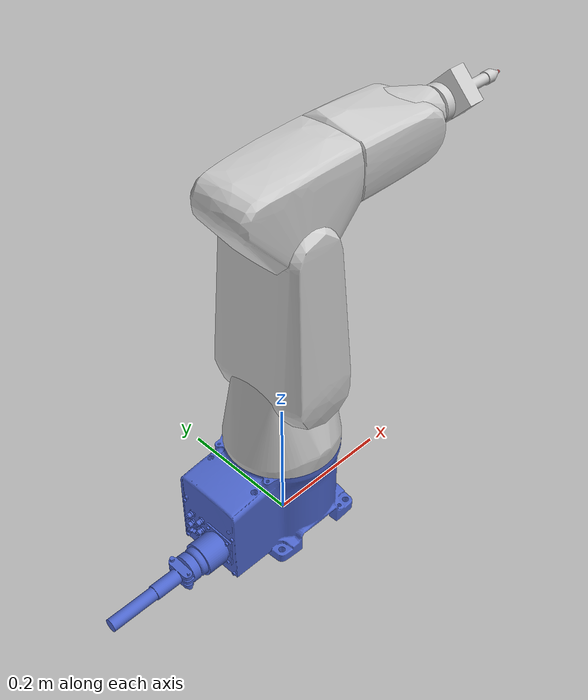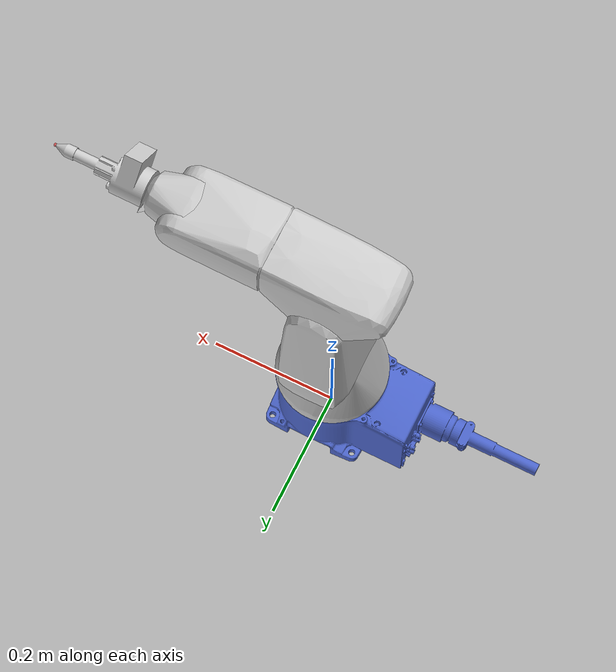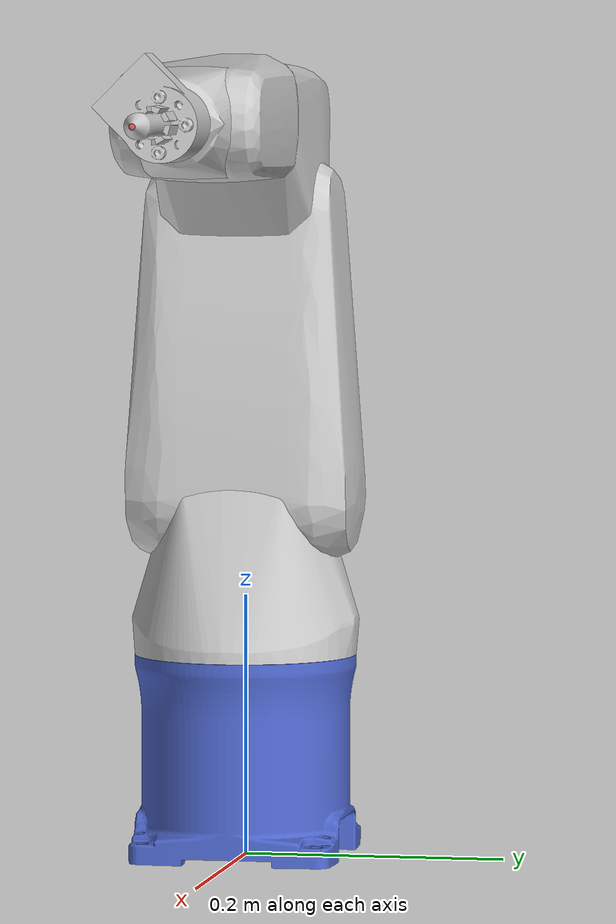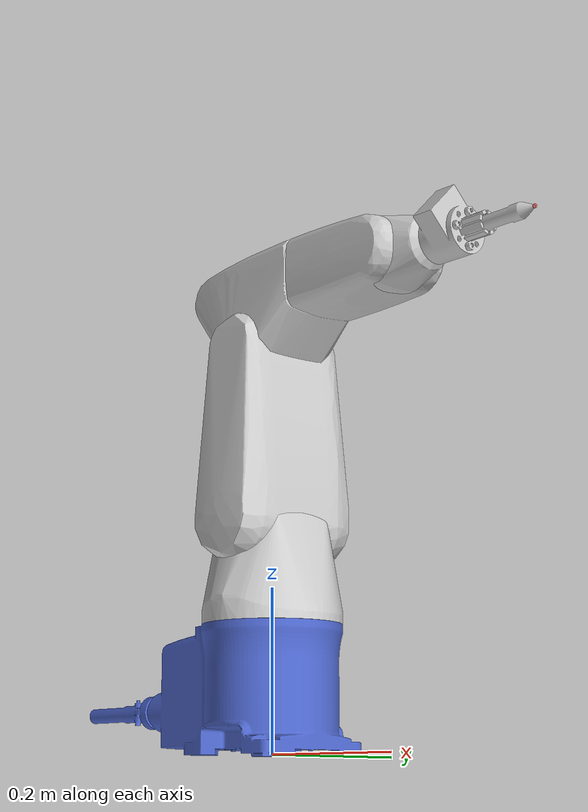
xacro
<?xml version="1.0"?>
<robot xmlns:xacro="http://www.ros.org/wiki/xacro" name="vp6242_force_sensor_soldering_lead">
  <xacro:macro name="mesh_origin">
    <origin rpy="-1.570796 3.141592 0" xyz="0 0 0"/>
  </xacro:macro>
  <xacro:property name="mesh_path" value="package://vp6242_description/robot" />
  <xacro:property name="mesh_scale" value="0.001 0.001 0.001" />
  <xacro:property name="default_joint_velocity" value="1.0" />
  <xacro:property name="default_joint_effort" value="1.0" /> <!-- As acceleration limit -->
  <xacro:property name="pi" value="3.1415926535897931" />
  <xacro:property name="pi2" value="pi / 2.0" />

  <link name="base_link">
    <visual>
	  <geometry>
	    <mesh filename="${mesh_path}/base.dae" scale="${mesh_scale}"/>
	  </geometry>
    <xacro:mesh_origin/>
	  <material name="base_link">
        <color rgba="0.3 0.4 0.8 1"/>
    </material>
    </visual>
    <collision>
	  	<geometry>
  	    <mesh filename="${mesh_path}/base_collision.dae" scale="${mesh_scale}"/>
	  	</geometry>
      <xacro:mesh_origin/>
    </collision>
  </link>

  <link name="link0">
    <visual>
      <geometry>
   	    <mesh filename="${mesh_path}/l0.dae" scale="${mesh_scale}"/>
      </geometry>
      <xacro:mesh_origin/>
      <material name="link">
        <color rgba="0.8 0.8 0.8 1"/>
      </material>
    </visual>
    <collision>
	  	<geometry>
        <mesh filename="${mesh_path}/l0_collision.dae" scale="${mesh_scale}"/>
	  	</geometry>
      <xacro:mesh_origin/>
    </collision>
  </link>

  <joint name="J1" type="revolute">
    <axis xyz="0 0 1"/>
    <limit effort="${default_joint_effort}" lower="${-(160.0/180.0) * pi}" upper="${(160.0/180.0) * pi}" velocity="${default_joint_velocity}"/>
    <origin rpy="0 0 0" xyz="0.0 0.0 0.155"/>
    <parent link="base_link"/>
    <child link="link0"/>
  </joint>

  <link name="link1">
    <visual>
      <geometry>
   	    <mesh filename="${mesh_path}/l1.dae" scale="${mesh_scale}"/>
      </geometry>
      <xacro:mesh_origin/>
      <material name="link"/>
    </visual>
    <collision>
     	<geometry>
        <mesh filename="${mesh_path}/l1_collision.dae" scale="${mesh_scale}"/>
	  	</geometry>
      <xacro:mesh_origin/>
    </collision>
  </link>

  <joint name="J2" type="revolute">
    <axis xyz="0 1 0"/>
    <limit effort="${default_joint_effort}" lower="${-(120.0/180.0) * pi}" upper="${(120.0/180.0) * pi}" velocity="${default_joint_velocity}"/>
    <origin rpy="0 0 0" xyz="0.0 0.0 0.125"/>
    <parent link="link0"/>
    <child link="link1"/>
  </joint>

  <link name="link2">
    <visual>
      <geometry>
   	    <mesh filename="${mesh_path}/l2.dae" scale="${mesh_scale}"/>
      </geometry>
      <origin rpy="-1.570796 1.570796 0" xyz="0 0 0"/>
	  <material name="link"/>
    </visual>
    <collision>
      <geometry>
        <mesh filename="${mesh_path}/l2_collision.dae" scale="${mesh_scale}"/>
	  	</geometry>
      <origin rpy="-1.570796 1.570796 0" xyz="0 0 0"/>
    </collision>
  </link>

 <joint name="J3" type="revolute">
    <axis xyz="0 1 0"/>
    <limit effort="${default_joint_effort}" lower="${(19.0/180.0) * pi}" upper="${(160.0/180.0) * pi}" velocity="${default_joint_velocity}"/>
    <origin rpy="0 0 0" xyz="0.0 0.0 0.210"/>
    <parent link="link1"/>
    <child link="link2"/>
  </joint>

  <link name="link3">
    <visual>
    <geometry>
      <mesh filename="${mesh_path}/l3.dae" scale="${mesh_scale}"/>
    </geometry>
    <origin rpy="0 1.570796 1.570796" xyz="0 0 0.085"/>
		<material name="link"/>
    </visual>
    <collision>
	  	<geometry>
        <mesh filename="${mesh_path}/l3_collision.dae" scale="${mesh_scale}"/>
	  	</geometry>
      <origin rpy="0 1.570796 1.570796" xyz="0 0 0.085"/>
    </collision>
  </link>

  <joint name="J4" type="revolute">
    <axis xyz="0 0 1"/>
    <limit effort="${default_joint_effort}" lower="${-(160.0/180.0) * pi}" upper="${(160.0/180.0) * pi}" velocity="${default_joint_velocity}"/>
    <origin rpy="0 0 0" xyz="-0.075 0.0 0.0"/>
    <parent link="link2"/>
    <child link="link3"/>
  </joint>

  <link name="link4">
    <visual>
      <geometry>
  			<mesh filename="${mesh_path}/l4.dae" scale="${mesh_scale}"/>
      </geometry>
    <origin rpy="0 1.570796 1.570796" xyz="0 0 0.0"/>
	  <material name="link"/>
    </visual>
    <collision>
	  	<geometry>
        <mesh filename="${mesh_path}/l4_collision.dae" scale="${mesh_scale}"/>
	  	</geometry>
      <origin rpy="0 1.570796 1.570796" xyz="0 0 0.0"/>
    </collision>
  </link>

  <joint name="J5" type="revolute">
    <axis xyz="0 1 0"/>
    <limit effort="${default_joint_effort}" lower="${-(120.0/180.0) * pi}" upper="${(120.0/180.0) * pi}" velocity="${default_joint_velocity}"/>
    <origin rpy="0 0 0" xyz="0.0 0.0 0.210"/>
    <parent link="link3"/>
    <child link="link4"/>
  </joint>

  <link name="force_sensor">
    <visual>
      <geometry>
  			<mesh filename="${mesh_path}/vp6242_force_sensor_soldering_lead.dae" scale="${mesh_scale}"/>
      </geometry>
    <origin rpy="1.570796 0 3.141592" xyz="0 0 0"/>
	  <material name="link"/>
    </visual>
    <collision>
	  	<geometry>
        <mesh filename="${mesh_path}/vp6242_force_sensor_soldering_lead_collision.dae" scale="${mesh_scale}"/>
	  	</geometry>
      <origin rpy="1.570796 0 3.141592" xyz="0 0 0"/>
    </collision>
  </link>

  <joint name="J6" type="revolute">
    <axis xyz="1 0 0"/>
    <limit effort="${default_joint_effort}" lower="${-(360/180.0) * pi}" upper="${(360/180.0) * pi}" velocity="${default_joint_velocity}"/>
    <origin rpy="0 -1.570796 0" xyz="0.0 0.0 0.07"/>
    <parent link="link4"/>
    <child link="force_sensor"/>
  </joint>

  <link name="lead_tip">
   <visual>
      <origin rpy="0 0 0" xyz="0 0 0"/>
      <geometry>
        <sphere radius="0.0025"/>
      </geometry>
      <material name="tip">
        <color rgba="1.0 0.0 0.0 0.5"/>
      </material>
    </visual>
  </link>

  <joint name="wrist_to_lead_tip" type="fixed">
    <axis xyz="1 0 0"/>
    <origin rpy="0 0 0" xyz="0.145 0 0.0"/>
    <parent link="force_sensor"/>
    <child link="lead_tip"/>
  </joint>

</robot>
